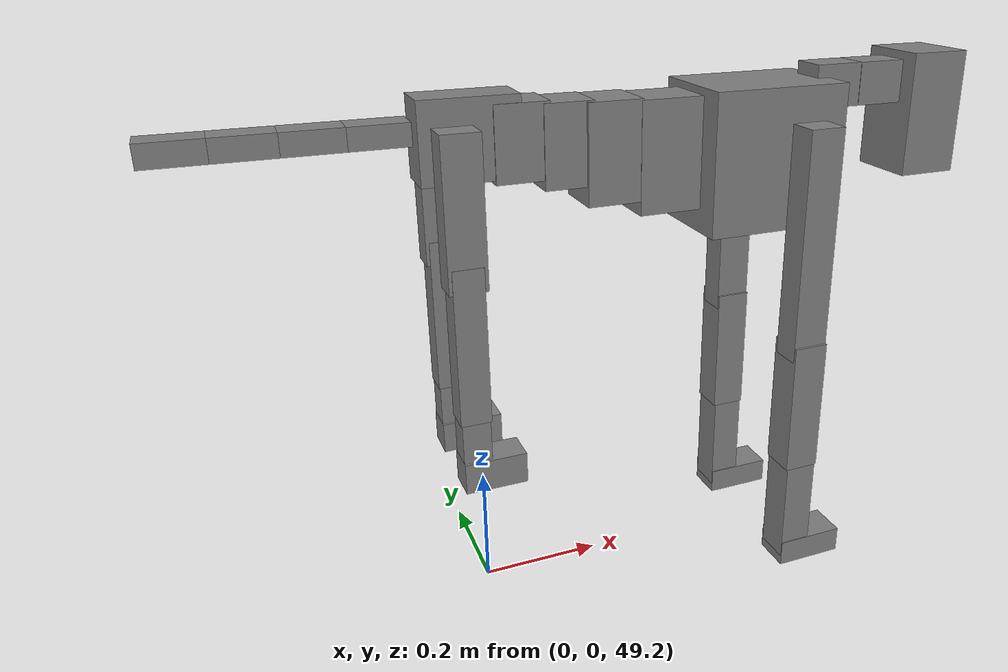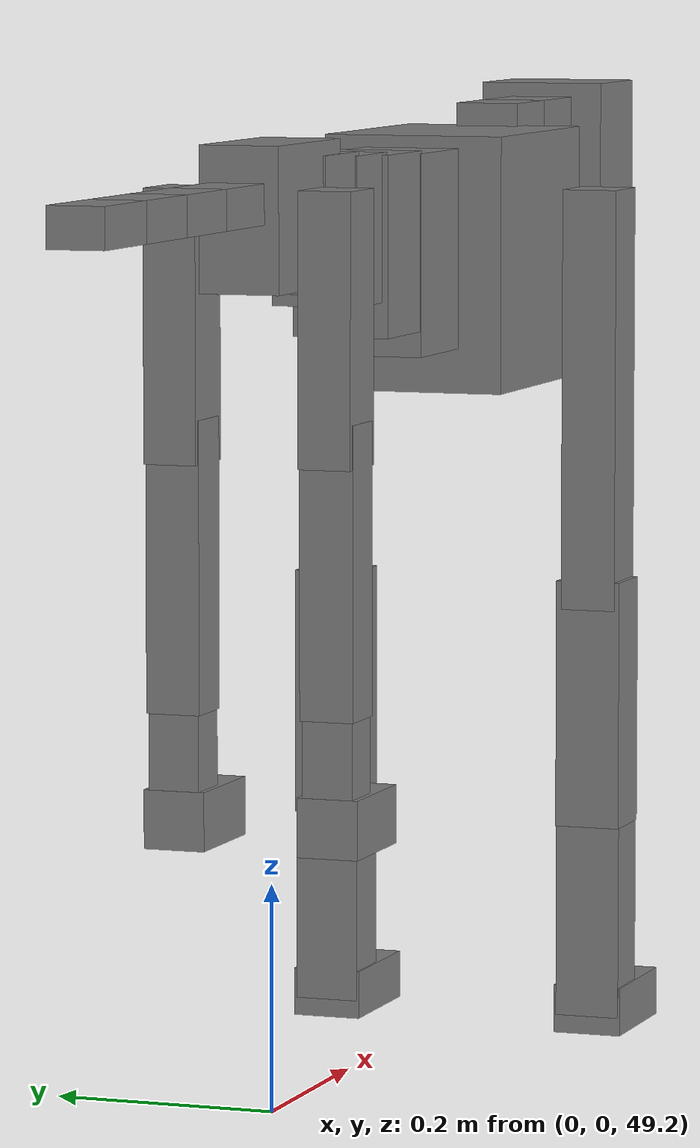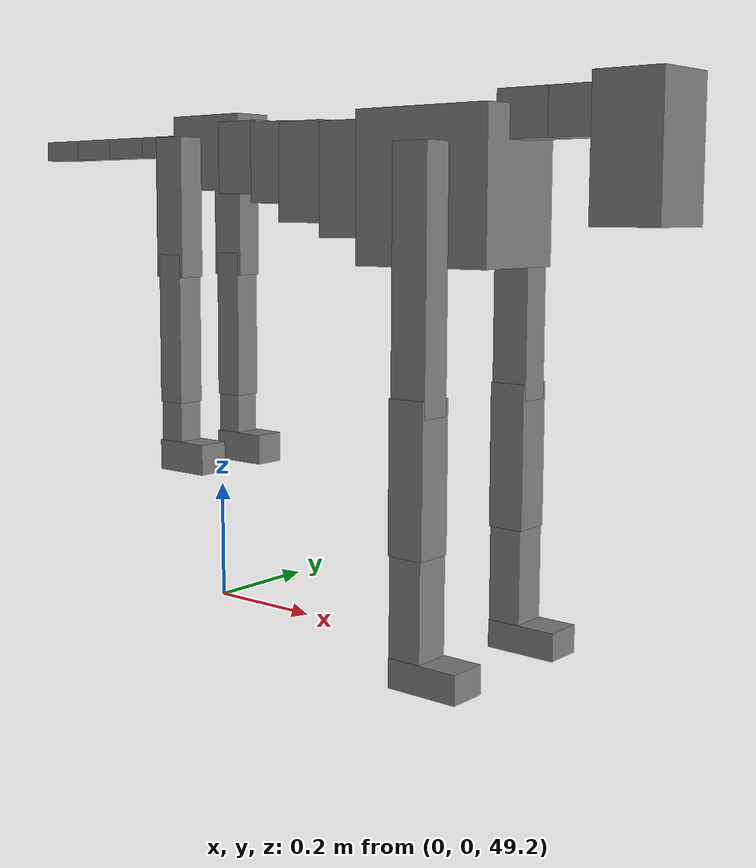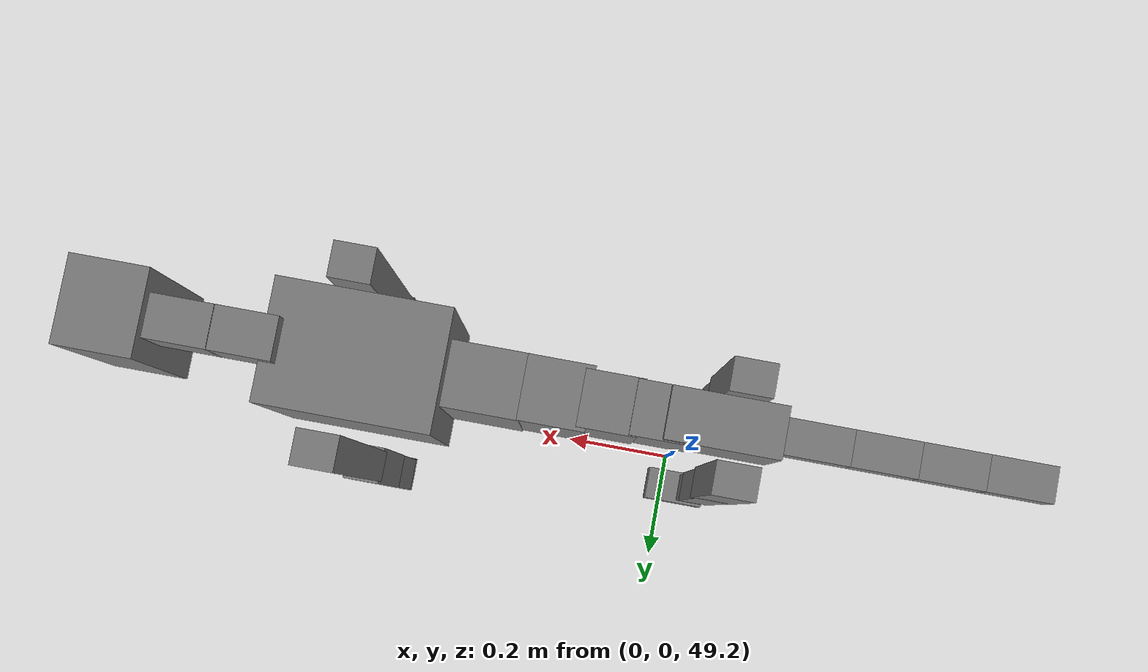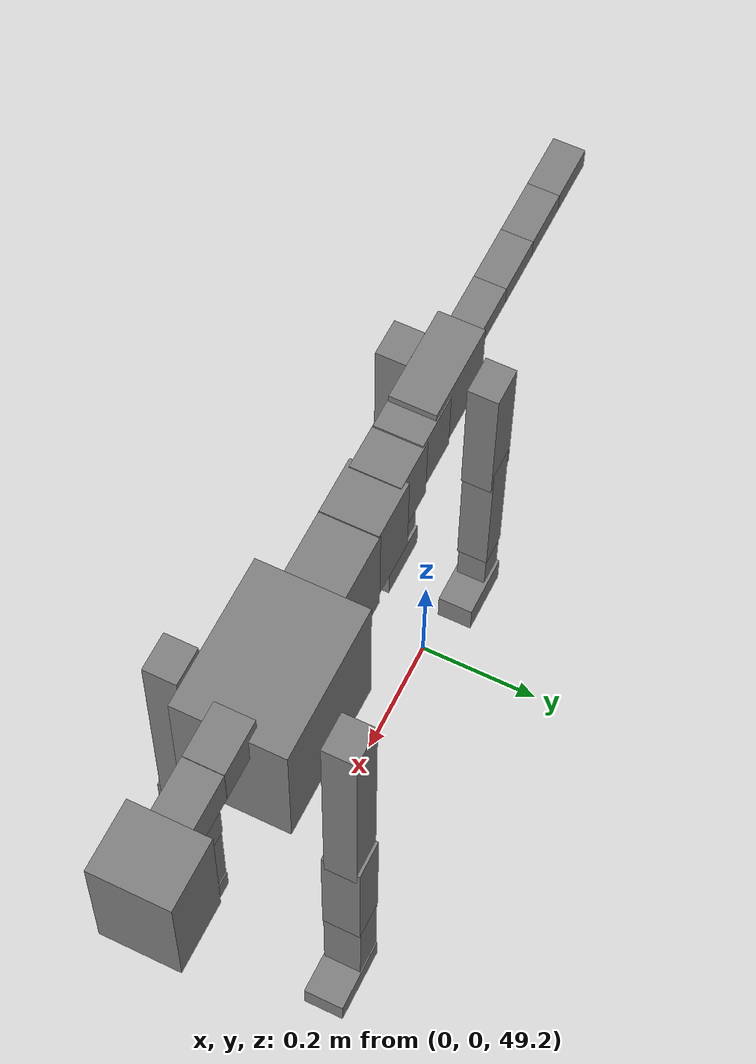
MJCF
<mujoco model="dog">

    <default>
        <joint armature="0.02" stiffness="1" damping="0.2" limited="true"/>
        <geom condim="3" friction="1 0.05 0.05" margin="0.01"/>
        <motor ctrllimited="true" ctrlrange="-1.0 1.0" forcelimited="true" gear="50"/>
    </default>

    <compiler inertiafromgeom="true" angle="radian"/>

    <option timestep="0.016" iterations="50" tolerance="1e-10" solver="Newton" jacobian="dense" cone="pyramidal"/>

    <size nconmax="20000" njmax="60000" nstack="5000000"/>
    <visual>
        <map force="0.1" zfar="30"/>
        <rgba haze="0.15 0.25 0.35 1"/>
        <quality shadowsize="2048"/>
        <global offwidth="800" offheight="800"/>
    </visual>

    <asset>
        <texture type="skybox" builtin="gradient" rgb1="0.3 0.5 0.7" rgb2="0 0 0" width="512" height="512"/>
        <texture name="texplane" type="2d" builtin="checker" rgb1=".2 .3 .4" rgb2=".1 0.15 0.2" width="512" height="512"
                 mark="cross" markrgb=".8 .8 .8"/>
        <texture name="texgeom" type="cube" builtin="flat" mark="cross" width="127" height="1278" rgb1="0.8 0.6 0.4"
                 rgb2="0.8 0.6 0.4" markrgb="1 1 1" random="0.01"/>

        <material name="matplane" reflectance="0.3" texture="texplane" texrepeat="1 1" texuniform="true"/>
        <material name="matgeom" texture="texgeom" texuniform="true" rgba="0.8 0.6 .4 1"/>
    </asset>

    <worldbody>
        <geom name="floor" pos="0 0 0" size="0 0 .25" type="plane" material="matplane" condim="3"/>

        <light directional="false" diffuse=".2 .2 .2" specular="0 0 0" pos="0 0 5" dir="0 0 -1" castshadow="false"/>
        <light mode="targetbodycom" target="torso" directional="false" diffuse=".8 .8 .8" specular="0.3 0.3 0.3"
               pos="0 0 4.0" dir="0 0 -1"/>

        <body name="root" pos="0 0 50">
            <freejoint name="root_1"/>
            <geom type="box" pos="0 0 -0.02" size="0.0774  0.0358  0.063" density="2030"/>

            <body name="spine1" pos="0.054 0 0">
                <joint name="spine1_y" axis="0 1 0" range="0 0.7" limited="true"/>
                <geom type="box" pos="0.02375 0 -0.03" size="0.04375  0.0375  0.05985" density="2030"/>

                <body name="spine2" pos="0.0612 0 0">
                    <joint name="spine2_y" axis="0 1 0" range="-0.15 0.15" limited="true"/>
                    <geom type="box" pos="0.03555  0  -0.04" size="0.04055  0.039  0.06615" density="2030"/>

                    <body name="spine3" pos="0.0730 0 0">
                        <joint name="spine3_y" axis="0 1 0" range="-0.15 0.15" limited="true"/>
                        <geom type="box" pos="0.03555  0  -0.057" size="0.04555  0.0445  0.081" density="2030"/>

                        <body name="spine4" pos="0.0780 0 0">
                            <joint name="spine4_y" axis="0 1 0" range="-0.15 0.15" limited="true"/>
                            <geom type="box" pos="0.05265  0  -0.07" size="0.05265  0.045  0.09135" density="2030"/>

                            <body name="torso" pos="0.1082 0 0">
                                <joint name="torso_y" axis="0 1 0" range="-0.15 0.15" limited="true"/>
                                <geom type="box" pos="0.11925  0  -0.085" size="0.11925  0.085  0.11745"
                                      density="2030"/>

                                <body name="neck1" pos="0.2160  0   0.0180">
                                    <joint name="neck1_y" axis="0 1 0" range="-1.2  -1" limited="true"/>
                                    <geom type="box" pos="0.0423  0  0" size="0.0423  0.03  0.036" density="2325"/>

                                    <body name="neck2" pos="0.0853  0  0">
                                        <joint name="neck2_y" axis="0 1 0" range="0.1  0" limited="true"/>
                                        <geom type="box" pos="0.0423  0  0" size="0.0423  0.03  0.036" density="2325"/>

                                        <body name="head" pos="0.0853  0  0">
                                            <joint name="head_y" axis="0 1 0" range="-0.3  -0.2" limited="true"/>
                                            <geom type="box" pos="0.0531  0  -0.055" size="0.0531  0.06  0.1044"
                                                  density="4030"/>

                                        </body>
                                    </body>
                                </body>

                                <body name="front_shoulder" pos="0.156  0   -0.0480">
                                    <joint name="front_shoulder_y" axis="0 1 0" range="-1 1.5" limited="true"/>
                                    <geom type="box" pos="0 0.13 -0.1695" size="0.0303  0.0259  0.1961" density="1158"/>
                                    <geom type="box" pos="0 -0.13 -0.1695" size="0.0303  0.0259  0.1961"
                                          density="1158"/>

                                    <body name="front_elbow" pos="0  0  -0.3390">
                                        <joint name="front_elbow_y" axis="0 1 0" range="-2 0" limited="true"/>
                                        <geom type="box" pos="0 0.13 -0.1158" size="0.0300  0.0306  0.1158"
                                              density="1081"/>
                                        <geom type="box" pos="0 -0.13 -0.1158" size="0.0300  0.0306  0.1158"
                                              density="1081"/>

                                        <body name="front_wrist" pos="0  0  -0.2316">
                                            <joint name="front_wrist_y" axis="0 1 0" range="-0.2 0" limited="true"/>
                                            <geom type="box" pos="0 0.13 -0.0836" size="0.0274  0.0305  0.0967"
                                                  density="1664"/>
                                            <geom type="box" pos="0 -0.13 -0.0836" size="0.0274  0.0305  0.0967"
                                                  density="1664"/>

                                            <body name="front_finger_end" pos="0  0  -0.1671">
                                                <joint name="front_finger_y" axis="0 1 0" range="-0.4 1"
                                                       limited="true"/>
                                                <geom type="box" pos="0.0325  0.13  -0.0076"
                                                      size="0.0596  0.0325  0.0226" density="1515"/>
                                                <geom type="box" pos="0.0325  -0.13  -0.0076"
                                                      size="0.0596  0.0325  0.0226" density="1515"/>

                                            </body>

                                        </body>
                                    </body>
                                </body>

                            </body>
                        </body>
                    </body>
                </body>
            </body>

            <body name="back_hip" pos="-0.03 0 -0.018">
                <joint name="back_hip_y" axis="0 1 0" range="-1.5 0.3" limited="true"/>
                <geom type="box" pos="0 0.07 -0.0953" size="0.0302  0.0237  0.1181" density="1154"/>
                <geom type="box" pos="0 -0.07 -0.0953" size="0.0302  0.0237  0.1181" density="1154"/>

                <body name="back_knee" pos="0  0  -0.1906">
                    <joint name="back_knee_y" axis="0 1 0" range="0 2.8" limited="true"/>
                    <geom type="box" pos="0 0.07 -0.1115" size="0.0246  0.0242  0.1271" density="1227"/>
                    <geom type="box" pos="0 -0.07 -0.1115" size="0.0246  0.0242  0.1271" density="1227"/>

                    <body name="back_ankle" pos="0  0  -0.2230">
                        <joint name="back_ankle_y" axis="0 1 0" range="-2.2 0" limited="true"/>
                        <geom type="box" pos="0 0.07 -0.0486" size="0.0228  0.0228  0.0599" density="1284"/>
                        <geom type="box" pos="0 -0.07 -0.0486" size="0.0228  0.0228  0.0599" density="1284"/>

                        <body name="back_toe_end" pos="0  0  -0.0972">
                            <joint name="back_toe_y" axis="0 1 0" range="-0.4 1" limited="true"/>
                            <geom type="box" pos="0.0276  0.07  -0.0108" size="0.0505  0.0276  0.0258" density="1515"/>
                            <geom type="box" pos="0.0276  -0.07  -0.0108" size="0.0505  0.0276  0.0258" density="1515"/>

                        </body>
                    </body>
                </body>
            </body>

            <body name="tail1" pos="-0.074 0 -0.006">
                <joint name="tail1_y" axis="0 1 0" range="-0.2 0.2" limited="true"/>
                <geom type="box" pos="-0.0536  0  0" size="0.045  0.025  0.0175" density="1587"/>

                <body name="tail2" pos="-0.09 0 0">
                    <joint name="tail2_y" axis="0 1 0" range="-0.2 0.2" limited="true"/>
                    <geom type="box" pos="-0.0536  0  0" size="0.045  0.025  0.0175" density="1587"/>

                    <body name="tail3" pos="-0.09 0 0">
                        <joint name="tail3_y" axis="0 1 0" range="-0.2 0.2" limited="true"/>
                        <geom type="box" pos="-0.0536  0  0" size="0.045  0.025  0.0175" density="1587"/>

                        <body name="tail4" pos="-0.09 0 0">
                            <joint name="tail4_y" axis="0 1 0" range="-0.2 0.2" limited="true"/>
                            <geom type="box" pos="-0.0536  0  0" size="0.045  0.025  0.0175" density="1587"/>

                        </body>
                    </body>
                </body>
            </body>
        </body>
    </worldbody>

    <actuator>
        <motor joint="spine1_y" forcerange="-150 150     "/>
        <motor joint="spine2_y" forcerange="-150 150     "/>
        <motor joint="spine3_y" forcerange="-150 150     "/>
        <motor joint="spine4_y" forcerange="-150 150     "/>
        <motor joint="torso_y" forcerange="-150 150     "/>
        <motor joint="neck1_y" forcerange="-100 100       "/>
        <motor joint="neck2_y" forcerange="-100 100       "/>
        <motor joint="head_y" forcerange="-150 150       "/>
        <motor joint="front_shoulder_y" forcerange="-113.76 158.65"/>
        <motor joint="front_elbow_y" forcerange="-129.27 193.59"/>
        <motor joint="front_wrist_y" forcerange="-147.21 96.51"/>
        <motor joint="front_finger_y" forcerange="-64.32 68.93"/>
        <motor joint="back_hip_y" forcerange="-298.55 216.80"/>
        <motor joint="back_knee_y" forcerange="-346.09 206.44"/>
        <motor joint="back_angle_y" forcerange="-93.82 170.94"/>
        <motor joint="back_toe_y" forcerange="-61.03 79.40"/>
        <motor joint="tail1_y" forcerange="-50 50     "/>
        <motor joint="tail2_y" forcerange="-50 50     "/>
        <motor joint="tail3_y" forcerange="-50 50     "/>
        <motor joint="tail4_y" forcerange="-50 50     "/>
    </actuator>
</mujoco>
